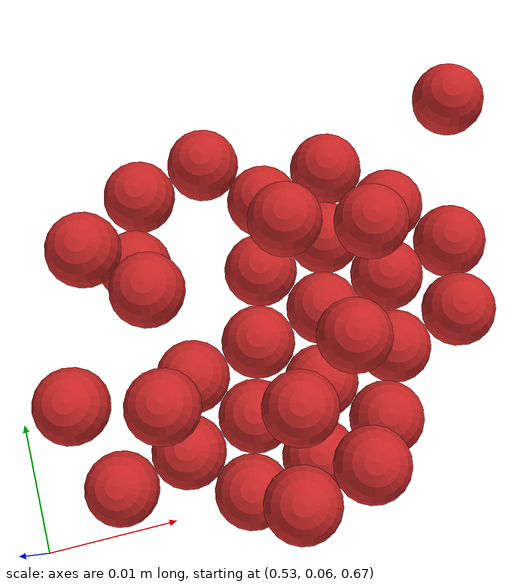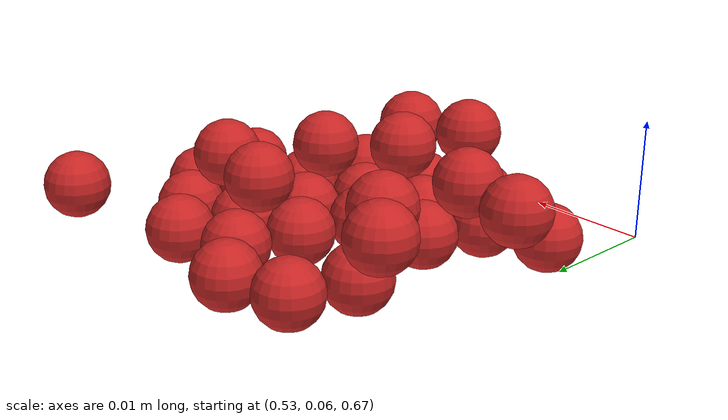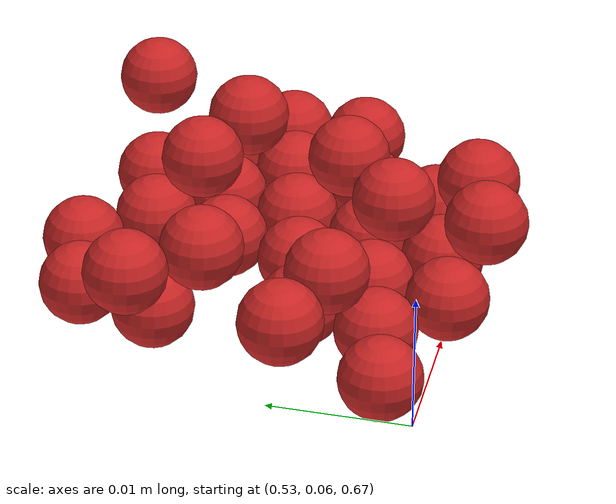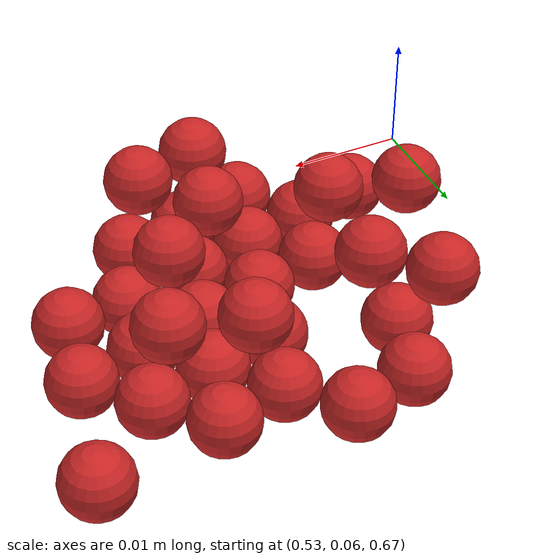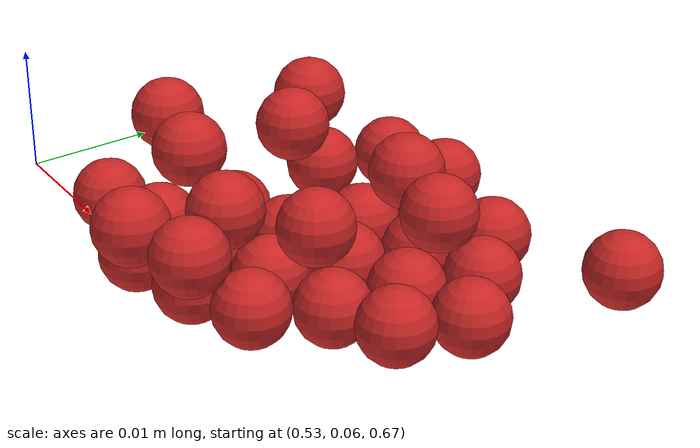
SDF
<sdf version="1.4">
 <world name="default">
  <model name="ground_plane">
   <static>1</static>
   <link name="link">
    <collision name="collision">
     <geometry><plane><normal>0 0 1</normal><size>100 100</size></plane></geometry>
     <surface><friction><ode><mu>100</mu><mu2>50</mu2></ode></friction></surface>
    </collision>
    <visual name="visual">
     <cast_shadows>0</cast_shadows>
     <geometry><plane><normal>0 0 1</normal><size>100 100</size></plane></geometry>
     <material>
      <script><uri>file://media/materials/scripts/gazebo.material</uri><name>Gazebo/Grey</name></script>
     </material>
    </visual>
    <velocity_decay><linear>0</linear><angular>0</angular></velocity_decay>
   </link>
  </model>
  <model name="sphere1">
   <pose>0.003203 0.003386 -0.026011 0.000162 -7.8e-05 1.65436e-24</pose>
   <link name="link">
    <pose>0.540545 0.067517 0.694885 0 -0 0</pose>
    <inertial>
     <mass>1e-08</mass>
     <inertia><ixx>4e-08</ixx><ixy>0</ixy><ixz>0</ixz><iyy>4e-08</iyy><iyz>0</iyz><izz>4e-08</izz></inertia>
    </inertial>
    <collision name="collision">
     <surface>
      <bounce><restitution_coefficient>0.5</restitution_coefficient><threshold>0</threshold></bounce>
      <contact><ode><kp>1e+08</kp><kd>1</kd></ode></contact>
      <friction><ode><mu>1e-06</mu><mu2>1e-06</mu2></ode></friction>
     </surface>
     <geometry><sphere><radius>0.003</radius></sphere></geometry>
    </collision>
    <visual name="visual">
     <geometry><sphere><radius>0.003</radius></sphere></geometry>
     <material>
      <script><uri>file://media/materials/scripts/gazebo.material</uri><name>Gazebo/Red</name></script>
     </material>
    </visual>
    <velocity_decay><linear>0</linear><angular>0</angular></velocity_decay>
   </link>
   <static>0</static>
  </model>
  <model name="sphere2">
   <pose>0.005686 -0.005185 -0.026004 0.000139 -0.000249 -1.8e-05</pose>
   <link name="link">
    <pose>0.546545 0.067517 0.694885 0 -0 0</pose>
    <inertial>
     <mass>1e-08</mass>
     <inertia><ixx>4e-08</ixx><ixy>0</ixy><ixz>0</ixz><iyy>4e-08</iyy><iyz>0</iyz><izz>4e-08</izz></inertia>
    </inertial>
    <collision name="collision">
     <surface>
      <bounce><restitution_coefficient>0.5</restitution_coefficient><threshold>0</threshold></bounce>
      <contact><ode><kp>1e+08</kp><kd>1</kd></ode></contact>
      <friction><ode><mu>1e-06</mu><mu2>1e-06</mu2></ode></friction>
     </surface>
     <geometry><sphere><radius>0.003</radius></sphere></geometry>
    </collision>
    <visual name="visual">
     <geometry><sphere><radius>0.003</radius></sphere></geometry>
     <material>
      <script><uri>file://media/materials/scripts/gazebo.material</uri><name>Gazebo/Red</name></script>
     </material>
    </visual>
    <velocity_decay><linear>0</linear><angular>0</angular></velocity_decay>
   </link>
   <static>0</static>
  </model>
  <model name="sphere5">
   <pose>0.000769 0.007472 -0.026106 0.000181 -0.000287 -1.32349e-23</pose>
   <link name="link">
    <pose>0.540545 0.073517 0.694885 0 -0 0</pose>
    <inertial>
     <mass>1e-08</mass>
     <inertia><ixx>4e-08</ixx><ixy>0</ixy><ixz>0</ixz><iyy>4e-08</iyy><iyz>0</iyz><izz>4e-08</izz></inertia>
    </inertial>
    <collision name="collision">
     <surface>
      <bounce><restitution_coefficient>0.5</restitution_coefficient><threshold>0</threshold></bounce>
      <contact><ode><kp>1e+08</kp><kd>1</kd></ode></contact>
      <friction><ode><mu>1e-06</mu><mu2>1e-06</mu2></ode></friction>
     </surface>
     <geometry><sphere><radius>0.003</radius></sphere></geometry>
    </collision>
    <visual name="visual">
     <geometry><sphere><radius>0.003</radius></sphere></geometry>
     <material>
      <script><uri>file://media/materials/scripts/gazebo.material</uri><name>Gazebo/Red</name></script>
     </material>
    </visual>
    <velocity_decay><linear>0</linear><angular>0</angular></velocity_decay>
   </link>
   <static>0</static>
  </model>
  <model name="sphere6">
   <pose>0.016097 0.007825 -0.025996 0.000464 0.000126 0</pose>
   <link name="link">
    <pose>0.546545 0.073517 0.694885 0 -0 0</pose>
    <inertial>
     <mass>1e-08</mass>
     <inertia><ixx>4e-08</ixx><ixy>0</ixy><ixz>0</ixz><iyy>4e-08</iyy><iyz>0</iyz><izz>4e-08</izz></inertia>
    </inertial>
    <collision name="collision">
     <surface>
      <bounce><restitution_coefficient>0.5</restitution_coefficient><threshold>0</threshold></bounce>
      <contact><ode><kp>1e+08</kp><kd>1</kd></ode></contact>
      <friction><ode><mu>1e-06</mu><mu2>1e-06</mu2></ode></friction>
     </surface>
     <geometry><sphere><radius>0.003</radius></sphere></geometry>
    </collision>
    <visual name="visual">
     <geometry><sphere><radius>0.003</radius></sphere></geometry>
     <material>
      <script><uri>file://media/materials/scripts/gazebo.material</uri><name>Gazebo/Red</name></script>
     </material>
    </visual>
    <velocity_decay><linear>0</linear><angular>0</angular></velocity_decay>
   </link>
   <static>0</static>
  </model>
  <model name="sphere10">
   <pose>0.006021 0.004342 -0.025845 6.4e-05 0.000215 0</pose>
   <link name="link">
    <pose>0.546545 0.079517 0.694885 0 -0 0</pose>
    <inertial>
     <mass>1e-08</mass>
     <inertia><ixx>4e-08</ixx><ixy>0</ixy><ixz>0</ixz><iyy>4e-08</iyy><iyz>0</iyz><izz>4e-08</izz></inertia>
    </inertial>
    <collision name="collision">
     <surface>
      <bounce><restitution_coefficient>0.5</restitution_coefficient><threshold>0</threshold></bounce>
      <contact><ode><kp>1e+08</kp><kd>1</kd></ode></contact>
      <friction><ode><mu>1e-06</mu><mu2>1e-06</mu2></ode></friction>
     </surface>
     <geometry><sphere><radius>0.003</radius></sphere></geometry>
    </collision>
    <visual name="visual">
     <geometry><sphere><radius>0.003</radius></sphere></geometry>
     <material>
      <script><uri>file://media/materials/scripts/gazebo.material</uri><name>Gazebo/Red</name></script>
     </material>
    </visual>
    <velocity_decay><linear>0</linear><angular>0</angular></velocity_decay>
   </link>
   <static>0</static>
  </model>
  <model name="sphere16">
   <pose>0.00165 -0.003881 -0.031895 0.00021 0.000134 -3.1e-05</pose>
   <link name="link">
    <pose>0.534545 0.067517 0.700885 0 -0 0</pose>
    <inertial>
     <mass>1e-08</mass>
     <inertia><ixx>4e-08</ixx><ixy>0</ixy><ixz>0</ixz><iyy>4e-08</iyy><iyz>0</iyz><izz>4e-08</izz></inertia>
    </inertial>
    <collision name="collision">
     <surface>
      <bounce><restitution_coefficient>0.5</restitution_coefficient><threshold>0</threshold></bounce>
      <contact><ode><kp>1e+08</kp><kd>1</kd></ode></contact>
      <friction><ode><mu>1e-06</mu><mu2>1e-06</mu2></ode></friction>
     </surface>
     <geometry><sphere><radius>0.003</radius></sphere></geometry>
    </collision>
    <visual name="visual">
     <geometry><sphere><radius>0.003</radius></sphere></geometry>
     <material>
      <script><uri>file://media/materials/scripts/gazebo.material</uri><name>Gazebo/Red</name></script>
     </material>
    </visual>
    <velocity_decay><linear>0</linear><angular>0</angular></velocity_decay>
   </link>
   <static>0</static>
  </model>
  <model name="sphere17">
   <pose>0.000987 -0.002211 -0.03166 0.000405 0.000742 -2e-06</pose>
   <link name="link">
    <pose>0.540545 0.067517 0.700885 0 -0 0</pose>
    <inertial>
     <mass>1e-08</mass>
     <inertia><ixx>4e-08</ixx><ixy>0</ixy><ixz>0</ixz><iyy>4e-08</iyy><iyz>0</iyz><izz>4e-08</izz></inertia>
    </inertial>
    <collision name="collision">
     <surface>
      <bounce><restitution_coefficient>0.5</restitution_coefficient><threshold>0</threshold></bounce>
      <contact><ode><kp>1e+08</kp><kd>1</kd></ode></contact>
      <friction><ode><mu>1e-06</mu><mu2>1e-06</mu2></ode></friction>
     </surface>
     <geometry><sphere><radius>0.003</radius></sphere></geometry>
    </collision>
    <visual name="visual">
     <geometry><sphere><radius>0.003</radius></sphere></geometry>
     <material>
      <script><uri>file://media/materials/scripts/gazebo.material</uri><name>Gazebo/Red</name></script>
     </material>
    </visual>
    <velocity_decay><linear>0</linear><angular>0</angular></velocity_decay>
   </link>
   <static>0</static>
  </model>
  <model name="sphere18">
   <pose>-0.000304 -0.00684 -0.031547 -0.000162 8e-06 -5.6e-05</pose>
   <link name="link">
    <pose>0.546545 0.067517 0.700885 0 -0 0</pose>
    <inertial>
     <mass>1e-08</mass>
     <inertia><ixx>4e-08</ixx><ixy>0</ixy><ixz>0</ixz><iyy>4e-08</iyy><iyz>0</iyz><izz>4e-08</izz></inertia>
    </inertial>
    <collision name="collision">
     <surface>
      <bounce><restitution_coefficient>0.5</restitution_coefficient><threshold>0</threshold></bounce>
      <contact><ode><kp>1e+08</kp><kd>1</kd></ode></contact>
      <friction><ode><mu>1e-06</mu><mu2>1e-06</mu2></ode></friction>
     </surface>
     <geometry><sphere><radius>0.003</radius></sphere></geometry>
    </collision>
    <visual name="visual">
     <geometry><sphere><radius>0.003</radius></sphere></geometry>
     <material>
      <script><uri>file://media/materials/scripts/gazebo.material</uri><name>Gazebo/Red</name></script>
     </material>
    </visual>
    <velocity_decay><linear>0</linear><angular>0</angular></velocity_decay>
   </link>
   <static>0</static>
  </model>
  <model name="sphere19">
   <pose>0.002918 -0.007158 -0.027279 -6e-06 -7.4e-05 1.7e-05</pose>
   <link name="link">
    <pose>0.552545 0.067517 0.700885 0 -0 0</pose>
    <inertial>
     <mass>1e-08</mass>
     <inertia><ixx>4e-08</ixx><ixy>0</ixy><ixz>0</ixz><iyy>4e-08</iyy><iyz>0</iyz><izz>4e-08</izz></inertia>
    </inertial>
    <collision name="collision">
     <surface>
      <bounce><restitution_coefficient>0.5</restitution_coefficient><threshold>0</threshold></bounce>
      <contact><ode><kp>1e+08</kp><kd>1</kd></ode></contact>
      <friction><ode><mu>1e-06</mu><mu2>1e-06</mu2></ode></friction>
     </surface>
     <geometry><sphere><radius>0.003</radius></sphere></geometry>
    </collision>
    <visual name="visual">
     <geometry><sphere><radius>0.003</radius></sphere></geometry>
     <material>
      <script><uri>file://media/materials/scripts/gazebo.material</uri><name>Gazebo/Red</name></script>
     </material>
    </visual>
    <velocity_decay><linear>0</linear><angular>0</angular></velocity_decay>
   </link>
   <static>0</static>
  </model>
  <model name="sphere22">
   <pose>0.008789 0.000331 -0.032001 0.00011 -2.9e-05 -4.1359e-25</pose>
   <link name="link">
    <pose>0.546545 0.073517 0.700885 0 -0 0</pose>
    <inertial>
     <mass>1e-08</mass>
     <inertia><ixx>4e-08</ixx><ixy>0</ixy><ixz>0</ixz><iyy>4e-08</iyy><iyz>0</iyz><izz>4e-08</izz></inertia>
    </inertial>
    <collision name="collision">
     <surface>
      <bounce><restitution_coefficient>0.5</restitution_coefficient><threshold>0</threshold></bounce>
      <contact><ode><kp>1e+08</kp><kd>1</kd></ode></contact>
      <friction><ode><mu>1e-06</mu><mu2>1e-06</mu2></ode></friction>
     </surface>
     <geometry><sphere><radius>0.003</radius></sphere></geometry>
    </collision>
    <visual name="visual">
     <geometry><sphere><radius>0.003</radius></sphere></geometry>
     <material>
      <script><uri>file://media/materials/scripts/gazebo.material</uri><name>Gazebo/Red</name></script>
     </material>
    </visual>
    <velocity_decay><linear>0</linear><angular>0</angular></velocity_decay>
   </link>
   <static>0</static>
  </model>
  <model name="sphere23">
   <pose>0.005376 -0.009689 -0.031397 3.4e-05 2.3e-05 1.5e-05</pose>
   <link name="link">
    <pose>0.552545 0.073517 0.700885 0 -0 0</pose>
    <inertial>
     <mass>1e-08</mass>
     <inertia><ixx>4e-08</ixx><ixy>0</ixy><ixz>0</ixz><iyy>4e-08</iyy><iyz>0</iyz><izz>4e-08</izz></inertia>
    </inertial>
    <collision name="collision">
     <surface>
      <bounce><restitution_coefficient>0.5</restitution_coefficient><threshold>0</threshold></bounce>
      <contact><ode><kp>1e+08</kp><kd>1</kd></ode></contact>
      <friction><ode><mu>1e-06</mu><mu2>1e-06</mu2></ode></friction>
     </surface>
     <geometry><sphere><radius>0.003</radius></sphere></geometry>
    </collision>
    <visual name="visual">
     <geometry><sphere><radius>0.003</radius></sphere></geometry>
     <material>
      <script><uri>file://media/materials/scripts/gazebo.material</uri><name>Gazebo/Red</name></script>
     </material>
    </visual>
    <velocity_decay><linear>0</linear><angular>0</angular></velocity_decay>
   </link>
   <static>0</static>
  </model>
  <model name="sphere27">
   <pose>0.01716 0.008794 -0.030247 0.000286 0.000306 0.000388</pose>
   <link name="link">
    <pose>0.552545 0.079517 0.700885 0 -0 0</pose>
    <inertial>
     <mass>1e-08</mass>
     <inertia><ixx>4e-08</ixx><ixy>0</ixy><ixz>0</ixz><iyy>4e-08</iyy><iyz>0</iyz><izz>4e-08</izz></inertia>
    </inertial>
    <collision name="collision">
     <surface>
      <bounce><restitution_coefficient>0.5</restitution_coefficient><threshold>0</threshold></bounce>
      <contact><ode><kp>1e+08</kp><kd>1</kd></ode></contact>
      <friction><ode><mu>1e-06</mu><mu2>1e-06</mu2></ode></friction>
     </surface>
     <geometry><sphere><radius>0.003</radius></sphere></geometry>
    </collision>
    <visual name="visual">
     <geometry><sphere><radius>0.003</radius></sphere></geometry>
     <material>
      <script><uri>file://media/materials/scripts/gazebo.material</uri><name>Gazebo/Red</name></script>
     </material>
    </visual>
    <velocity_decay><linear>0</linear><angular>0</angular></velocity_decay>
   </link>
   <static>0</static>
  </model>
  <model name="sphere33">
   <pose>0.007444 -0.000948 -0.038104 6.8e-05 -0.000172 -1.65436e-24</pose>
   <link name="link">
    <pose>0.540545 0.067517 0.706885 0 -0 0</pose>
    <inertial>
     <mass>1e-08</mass>
     <inertia><ixx>4e-08</ixx><ixy>0</ixy><ixz>0</ixz><iyy>4e-08</iyy><iyz>0</iyz><izz>4e-08</izz></inertia>
    </inertial>
    <collision name="collision">
     <surface>
      <bounce><restitution_coefficient>0.5</restitution_coefficient><threshold>0</threshold></bounce>
      <contact><ode><kp>1e+08</kp><kd>1</kd></ode></contact>
      <friction><ode><mu>1e-06</mu><mu2>1e-06</mu2></ode></friction>
     </surface>
     <geometry><sphere><radius>0.003</radius></sphere></geometry>
    </collision>
    <visual name="visual">
     <geometry><sphere><radius>0.003</radius></sphere></geometry>
     <material>
      <script><uri>file://media/materials/scripts/gazebo.material</uri><name>Gazebo/Red</name></script>
     </material>
    </visual>
    <velocity_decay><linear>0</linear><angular>0</angular></velocity_decay>
   </link>
   <static>0</static>
  </model>
  <model name="sphere34">
   <pose>0.003111 -0.008665 -0.033055 0.000181 -2.5e-05 6.3e-05</pose>
   <link name="link">
    <pose>0.546545 0.067517 0.706885 0 -0 0</pose>
    <inertial>
     <mass>1e-08</mass>
     <inertia><ixx>4e-08</ixx><ixy>0</ixy><ixz>0</ixz><iyy>4e-08</iyy><iyz>0</iyz><izz>4e-08</izz></inertia>
    </inertial>
    <collision name="collision">
     <surface>
      <bounce><restitution_coefficient>0.5</restitution_coefficient><threshold>0</threshold></bounce>
      <contact><ode><kp>1e+08</kp><kd>1</kd></ode></contact>
      <friction><ode><mu>1e-06</mu><mu2>1e-06</mu2></ode></friction>
     </surface>
     <geometry><sphere><radius>0.003</radius></sphere></geometry>
    </collision>
    <visual name="visual">
     <geometry><sphere><radius>0.003</radius></sphere></geometry>
     <material>
      <script><uri>file://media/materials/scripts/gazebo.material</uri><name>Gazebo/Red</name></script>
     </material>
    </visual>
    <velocity_decay><linear>0</linear><angular>0</angular></velocity_decay>
   </link>
   <static>0</static>
  </model>
  <model name="sphere37">
   <pose>0.010604 0.004582 -0.037971 5.5e-05 -4.4e-05 -4.1359e-25</pose>
   <link name="link">
    <pose>0.540545 0.073517 0.706885 0 -0 0</pose>
    <inertial>
     <mass>1e-08</mass>
     <inertia><ixx>4e-08</ixx><ixy>0</ixy><ixz>0</ixz><iyy>4e-08</iyy><iyz>0</iyz><izz>4e-08</izz></inertia>
    </inertial>
    <collision name="collision">
     <surface>
      <bounce><restitution_coefficient>0.5</restitution_coefficient><threshold>0</threshold></bounce>
      <contact><ode><kp>1e+08</kp><kd>1</kd></ode></contact>
      <friction><ode><mu>1e-06</mu><mu2>1e-06</mu2></ode></friction>
     </surface>
     <geometry><sphere><radius>0.003</radius></sphere></geometry>
    </collision>
    <visual name="visual">
     <geometry><sphere><radius>0.003</radius></sphere></geometry>
     <material>
      <script><uri>file://media/materials/scripts/gazebo.material</uri><name>Gazebo/Red</name></script>
     </material>
    </visual>
    <velocity_decay><linear>0</linear><angular>0</angular></velocity_decay>
   </link>
   <static>0</static>
  </model>
  <model name="sphere38">
   <pose>0.010422 0.00613 -0.03807 0.000175 -6.8e-05 -3.30872e-24</pose>
   <link name="link">
    <pose>0.546545 0.073517 0.706885 0 -0 0</pose>
    <inertial>
     <mass>1e-08</mass>
     <inertia><ixx>4e-08</ixx><ixy>0</ixy><ixz>0</ixz><iyy>4e-08</iyy><iyz>0</iyz><izz>4e-08</izz></inertia>
    </inertial>
    <collision name="collision">
     <surface>
      <bounce><restitution_coefficient>0.5</restitution_coefficient><threshold>0</threshold></bounce>
      <contact><ode><kp>1e+08</kp><kd>1</kd></ode></contact>
      <friction><ode><mu>1e-06</mu><mu2>1e-06</mu2></ode></friction>
     </surface>
     <geometry><sphere><radius>0.003</radius></sphere></geometry>
    </collision>
    <visual name="visual">
     <geometry><sphere><radius>0.003</radius></sphere></geometry>
     <material>
      <script><uri>file://media/materials/scripts/gazebo.material</uri><name>Gazebo/Red</name></script>
     </material>
    </visual>
    <velocity_decay><linear>0</linear><angular>0</angular></velocity_decay>
   </link>
   <static>0</static>
  </model>
  <model name="sphere51">
   <pose>0.007858 0.00201 -0.044313 0.000305 -0.000319 4.8e-05</pose>
   <link name="link">
    <pose>0.552545 0.067517 0.712885 0 -0 0</pose>
    <inertial>
     <mass>1e-08</mass>
     <inertia><ixx>4e-08</ixx><ixy>0</ixy><ixz>0</ixz><iyy>4e-08</iyy><iyz>0</iyz><izz>4e-08</izz></inertia>
    </inertial>
    <collision name="collision">
     <surface>
      <bounce><restitution_coefficient>0.5</restitution_coefficient><threshold>0</threshold></bounce>
      <contact><ode><kp>1e+08</kp><kd>1</kd></ode></contact>
      <friction><ode><mu>1e-06</mu><mu2>1e-06</mu2></ode></friction>
     </surface>
     <geometry><sphere><radius>0.003</radius></sphere></geometry>
    </collision>
    <visual name="visual">
     <geometry><sphere><radius>0.003</radius></sphere></geometry>
     <material>
      <script><uri>file://media/materials/scripts/gazebo.material</uri><name>Gazebo/Red</name></script>
     </material>
    </visual>
    <velocity_decay><linear>0</linear><angular>0</angular></velocity_decay>
   </link>
   <static>0</static>
  </model>
  <model name="sphere54">
   <pose>0.00758 -0.005335 -0.04442 0.000262 -0.000609 0</pose>
   <link name="link">
    <pose>0.546545 0.073517 0.712885 0 -0 0</pose>
    <inertial>
     <mass>1e-08</mass>
     <inertia><ixx>4e-08</ixx><ixy>0</ixy><ixz>0</ixz><iyy>4e-08</iyy><iyz>0</iyz><izz>4e-08</izz></inertia>
    </inertial>
    <collision name="collision">
     <surface>
      <bounce><restitution_coefficient>0.5</restitution_coefficient><threshold>0</threshold></bounce>
      <contact><ode><kp>1e+08</kp><kd>1</kd></ode></contact>
      <friction><ode><mu>1e-06</mu><mu2>1e-06</mu2></ode></friction>
     </surface>
     <geometry><sphere><radius>0.003</radius></sphere></geometry>
    </collision>
    <visual name="visual">
     <geometry><sphere><radius>0.003</radius></sphere></geometry>
     <material>
      <script><uri>file://media/materials/scripts/gazebo.material</uri><name>Gazebo/Red</name></script>
     </material>
    </visual>
    <velocity_decay><linear>0</linear><angular>0</angular></velocity_decay>
   </link>
   <static>0</static>
  </model>
  <model name="sphere55">
   <pose>0.014522 0.002924 -0.044013 -0.000484 -0.000203 -8.9e-05</pose>
   <link name="link">
    <pose>0.552545 0.073517 0.712885 0 -0 0</pose>
    <inertial>
     <mass>1e-08</mass>
     <inertia><ixx>4e-08</ixx><ixy>0</ixy><ixz>0</ixz><iyy>4e-08</iyy><iyz>0</iyz><izz>4e-08</izz></inertia>
    </inertial>
    <collision name="collision">
     <surface>
      <bounce><restitution_coefficient>0.5</restitution_coefficient><threshold>0</threshold></bounce>
      <contact><ode><kp>1e+08</kp><kd>1</kd></ode></contact>
      <friction><ode><mu>1e-06</mu><mu2>1e-06</mu2></ode></friction>
     </surface>
     <geometry><sphere><radius>0.003</radius></sphere></geometry>
    </collision>
    <visual name="visual">
     <geometry><sphere><radius>0.003</radius></sphere></geometry>
     <material>
      <script><uri>file://media/materials/scripts/gazebo.material</uri><name>Gazebo/Red</name></script>
     </material>
    </visual>
    <velocity_decay><linear>0</linear><angular>0</angular></velocity_decay>
   </link>
   <static>0</static>
  </model>
  <model name="sphere57">
   <pose>0.008039 0.008551 -0.043964 -8.1e-05 -6e-05 -8.27181e-25</pose>
   <link name="link">
    <pose>0.540545 0.079517 0.712885 0 -0 0</pose>
    <inertial>
     <mass>1e-08</mass>
     <inertia><ixx>4e-08</ixx><ixy>0</ixy><ixz>0</ixz><iyy>4e-08</iyy><iyz>0</iyz><izz>4e-08</izz></inertia>
    </inertial>
    <collision name="collision">
     <surface>
      <bounce><restitution_coefficient>0.5</restitution_coefficient><threshold>0</threshold></bounce>
      <contact><ode><kp>1e+08</kp><kd>1</kd></ode></contact>
      <friction><ode><mu>1e-06</mu><mu2>1e-06</mu2></ode></friction>
     </surface>
     <geometry><sphere><radius>0.003</radius></sphere></geometry>
    </collision>
    <visual name="visual">
     <geometry><sphere><radius>0.003</radius></sphere></geometry>
     <material>
      <script><uri>file://media/materials/scripts/gazebo.material</uri><name>Gazebo/Red</name></script>
     </material>
    </visual>
    <velocity_decay><linear>0</linear><angular>0</angular></velocity_decay>
   </link>
   <static>0</static>
  </model>
  <model name="sphere65">
   <pose>0.000579 0.00083 -0.045123 0 -0 0</pose>
   <link name="link">
    <pose>0.540545 0.067517 0.718885 0 -0 0</pose>
    <inertial>
     <mass>1e-08</mass>
     <inertia><ixx>4e-08</ixx><ixy>0</ixy><ixz>0</ixz><iyy>4e-08</iyy><iyz>0</iyz><izz>4e-08</izz></inertia>
    </inertial>
    <collision name="collision">
     <surface>
      <bounce><restitution_coefficient>0.5</restitution_coefficient><threshold>0</threshold></bounce>
      <contact><ode><kp>1e+08</kp><kd>1</kd></ode></contact>
      <friction><ode><mu>1e-06</mu><mu2>1e-06</mu2></ode></friction>
     </surface>
     <geometry><sphere><radius>0.003</radius></sphere></geometry>
    </collision>
    <visual name="visual">
     <geometry><sphere><radius>0.003</radius></sphere></geometry>
     <material>
      <script><uri>file://media/materials/scripts/gazebo.material</uri><name>Gazebo/Red</name></script>
     </material>
    </visual>
    <velocity_decay><linear>0</linear><angular>0</angular></velocity_decay>
   </link>
   <static>0</static>
  </model>
  <model name="sphere66">
   <pose>0.004666 -0.00176 -0.045083 0 -0 0</pose>
   <link name="link">
    <pose>0.546545 0.067517 0.718885 0 -0 0</pose>
    <inertial>
     <mass>1e-08</mass>
     <inertia><ixx>4e-08</ixx><ixy>0</ixy><ixz>0</ixz><iyy>4e-08</iyy><iyz>0</iyz><izz>4e-08</izz></inertia>
    </inertial>
    <collision name="collision">
     <surface>
      <bounce><restitution_coefficient>0.5</restitution_coefficient><threshold>0</threshold></bounce>
      <contact><ode><kp>1e+08</kp><kd>1</kd></ode></contact>
      <friction><ode><mu>1e-06</mu><mu2>1e-06</mu2></ode></friction>
     </surface>
     <geometry><sphere><radius>0.003</radius></sphere></geometry>
    </collision>
    <visual name="visual">
     <geometry><sphere><radius>0.003</radius></sphere></geometry>
     <material>
      <script><uri>file://media/materials/scripts/gazebo.material</uri><name>Gazebo/Red</name></script>
     </material>
    </visual>
    <velocity_decay><linear>0</linear><angular>0</angular></velocity_decay>
   </link>
   <static>0</static>
  </model>
  <model name="sphere67">
   <pose>0.01336 0.003411 -0.049169 7.7e-05 -4.6e-05 3.6e-05</pose>
   <link name="link">
    <pose>0.552545 0.067517 0.718885 0 -0 0</pose>
    <inertial>
     <mass>1e-08</mass>
     <inertia><ixx>4e-08</ixx><ixy>0</ixy><ixz>0</ixz><iyy>4e-08</iyy><iyz>0</iyz><izz>4e-08</izz></inertia>
    </inertial>
    <collision name="collision">
     <surface>
      <bounce><restitution_coefficient>0.5</restitution_coefficient><threshold>0</threshold></bounce>
      <contact><ode><kp>1e+08</kp><kd>1</kd></ode></contact>
      <friction><ode><mu>1e-06</mu><mu2>1e-06</mu2></ode></friction>
     </surface>
     <geometry><sphere><radius>0.003</radius></sphere></geometry>
    </collision>
    <visual name="visual">
     <geometry><sphere><radius>0.003</radius></sphere></geometry>
     <material>
      <script><uri>file://media/materials/scripts/gazebo.material</uri><name>Gazebo/Red</name></script>
     </material>
    </visual>
    <velocity_decay><linear>0</linear><angular>0</angular></velocity_decay>
   </link>
   <static>0</static>
  </model>
  <model name="sphere70">
   <pose>0.014498 0.001719 -0.049892 -5e-06 0.000112 0</pose>
   <link name="link">
    <pose>0.546545 0.073517 0.718885 0 -0 0</pose>
    <inertial>
     <mass>1e-08</mass>
     <inertia><ixx>4e-08</ixx><ixy>0</ixy><ixz>0</ixz><iyy>4e-08</iyy><iyz>0</iyz><izz>4e-08</izz></inertia>
    </inertial>
    <collision name="collision">
     <surface>
      <bounce><restitution_coefficient>0.5</restitution_coefficient><threshold>0</threshold></bounce>
      <contact><ode><kp>1e+08</kp><kd>1</kd></ode></contact>
      <friction><ode><mu>1e-06</mu><mu2>1e-06</mu2></ode></friction>
     </surface>
     <geometry><sphere><radius>0.003</radius></sphere></geometry>
    </collision>
    <visual name="visual">
     <geometry><sphere><radius>0.003</radius></sphere></geometry>
     <material>
      <script><uri>file://media/materials/scripts/gazebo.material</uri><name>Gazebo/Red</name></script>
     </material>
    </visual>
    <velocity_decay><linear>0</linear><angular>0</angular></velocity_decay>
   </link>
   <static>0</static>
  </model>
  <model name="sphere80">
   <pose>-8.4e-05 0.002528 -0.051172 0 -0 0</pose>
   <link name="link">
    <pose>0.534545 0.067517 0.724885 0 -0 0</pose>
    <inertial>
     <mass>1e-08</mass>
     <inertia><ixx>4e-08</ixx><ixy>0</ixy><ixz>0</ixz><iyy>4e-08</iyy><iyz>0</iyz><izz>4e-08</izz></inertia>
    </inertial>
    <collision name="collision">
     <surface>
      <bounce><restitution_coefficient>0.5</restitution_coefficient><threshold>0</threshold></bounce>
      <contact><ode><kp>1e+08</kp><kd>1</kd></ode></contact>
      <friction><ode><mu>1e-06</mu><mu2>1e-06</mu2></ode></friction>
     </surface>
     <geometry><sphere><radius>0.003</radius></sphere></geometry>
    </collision>
    <visual name="visual">
     <geometry><sphere><radius>0.003</radius></sphere></geometry>
     <material>
      <script><uri>file://media/materials/scripts/gazebo.material</uri><name>Gazebo/Red</name></script>
     </material>
    </visual>
    <velocity_decay><linear>0</linear><angular>0</angular></velocity_decay>
   </link>
   <static>0</static>
  </model>
  <model name="sphere82">
   <pose>0.002885 0.004797 -0.055899 4.1e-05 9.1e-05 -8.27181e-25</pose>
   <link name="link">
    <pose>0.546545 0.067517 0.724885 0 -0 0</pose>
    <inertial>
     <mass>1e-08</mass>
     <inertia><ixx>4e-08</ixx><ixy>0</ixy><ixz>0</ixz><iyy>4e-08</iyy><iyz>0</iyz><izz>4e-08</izz></inertia>
    </inertial>
    <collision name="collision">
     <surface>
      <bounce><restitution_coefficient>0.5</restitution_coefficient><threshold>0</threshold></bounce>
      <contact><ode><kp>1e+08</kp><kd>1</kd></ode></contact>
      <friction><ode><mu>1e-06</mu><mu2>1e-06</mu2></ode></friction>
     </surface>
     <geometry><sphere><radius>0.003</radius></sphere></geometry>
    </collision>
    <visual name="visual">
     <geometry><sphere><radius>0.003</radius></sphere></geometry>
     <material>
      <script><uri>file://media/materials/scripts/gazebo.material</uri><name>Gazebo/Red</name></script>
     </material>
    </visual>
    <velocity_decay><linear>0</linear><angular>0</angular></velocity_decay>
   </link>
   <static>0</static>
  </model>
  <model name="sphere83">
   <pose>0.004103 0.00269 -0.051338 0 -0 0</pose>
   <link name="link">
    <pose>0.552545 0.067517 0.724885 0 -0 0</pose>
    <inertial>
     <mass>1e-08</mass>
     <inertia><ixx>4e-08</ixx><ixy>0</ixy><ixz>0</ixz><iyy>4e-08</iyy><iyz>0</iyz><izz>4e-08</izz></inertia>
    </inertial>
    <collision name="collision">
     <surface>
      <bounce><restitution_coefficient>0.5</restitution_coefficient><threshold>0</threshold></bounce>
      <contact><ode><kp>1e+08</kp><kd>1</kd></ode></contact>
      <friction><ode><mu>1e-06</mu><mu2>1e-06</mu2></ode></friction>
     </surface>
     <geometry><sphere><radius>0.003</radius></sphere></geometry>
    </collision>
    <visual name="visual">
     <geometry><sphere><radius>0.003</radius></sphere></geometry>
     <material>
      <script><uri>file://media/materials/scripts/gazebo.material</uri><name>Gazebo/Red</name></script>
     </material>
    </visual>
    <velocity_decay><linear>0</linear><angular>0</angular></velocity_decay>
   </link>
   <static>0</static>
  </model>
  <model name="sphere84">
   <pose>0.003221 0.008273 -0.051065 0 -0 0</pose>
   <link name="link">
    <pose>0.534545 0.073517 0.724885 0 -0 0</pose>
    <inertial>
     <mass>1e-08</mass>
     <inertia><ixx>4e-08</ixx><ixy>0</ixy><ixz>0</ixz><iyy>4e-08</iyy><iyz>0</iyz><izz>4e-08</izz></inertia>
    </inertial>
    <collision name="collision">
     <surface>
      <bounce><restitution_coefficient>0.5</restitution_coefficient><threshold>0</threshold></bounce>
      <contact><ode><kp>1e+08</kp><kd>1</kd></ode></contact>
      <friction><ode><mu>1e-06</mu><mu2>1e-06</mu2></ode></friction>
     </surface>
     <geometry><sphere><radius>0.003</radius></sphere></geometry>
    </collision>
    <visual name="visual">
     <geometry><sphere><radius>0.003</radius></sphere></geometry>
     <material>
      <script><uri>file://media/materials/scripts/gazebo.material</uri><name>Gazebo/Red</name></script>
     </material>
    </visual>
    <velocity_decay><linear>0</linear><angular>0</angular></velocity_decay>
   </link>
   <static>0</static>
  </model>
  <model name="sphere85">
   <pose>0.001392 0.003951 -0.051071 0 -0 0</pose>
   <link name="link">
    <pose>0.540545 0.073517 0.724885 0 -0 0</pose>
    <inertial>
     <mass>1e-08</mass>
     <inertia><ixx>4e-08</ixx><ixy>0</ixy><ixz>0</ixz><iyy>4e-08</iyy><iyz>0</iyz><izz>4e-08</izz></inertia>
    </inertial>
    <collision name="collision">
     <surface>
      <bounce><restitution_coefficient>0.5</restitution_coefficient><threshold>0</threshold></bounce>
      <contact><ode><kp>1e+08</kp><kd>1</kd></ode></contact>
      <friction><ode><mu>1e-06</mu><mu2>1e-06</mu2></ode></friction>
     </surface>
     <geometry><sphere><radius>0.003</radius></sphere></geometry>
    </collision>
    <visual name="visual">
     <geometry><sphere><radius>0.003</radius></sphere></geometry>
     <material>
      <script><uri>file://media/materials/scripts/gazebo.material</uri><name>Gazebo/Red</name></script>
     </material>
    </visual>
    <velocity_decay><linear>0</linear><angular>0</angular></velocity_decay>
   </link>
   <static>0</static>
  </model>
  <model name="sphere86">
   <pose>0.007116 0.006948 -0.05107 0 -0 0</pose>
   <link name="link">
    <pose>0.546545 0.073517 0.724885 0 -0 0</pose>
    <inertial>
     <mass>1e-08</mass>
     <inertia><ixx>4e-08</ixx><ixy>0</ixy><ixz>0</ixz><iyy>4e-08</iyy><iyz>0</iyz><izz>4e-08</izz></inertia>
    </inertial>
    <collision name="collision">
     <surface>
      <bounce><restitution_coefficient>0.5</restitution_coefficient><threshold>0</threshold></bounce>
      <contact><ode><kp>1e+08</kp><kd>1</kd></ode></contact>
      <friction><ode><mu>1e-06</mu><mu2>1e-06</mu2></ode></friction>
     </surface>
     <geometry><sphere><radius>0.003</radius></sphere></geometry>
    </collision>
    <visual name="visual">
     <geometry><sphere><radius>0.003</radius></sphere></geometry>
     <material>
      <script><uri>file://media/materials/scripts/gazebo.material</uri><name>Gazebo/Red</name></script>
     </material>
    </visual>
    <velocity_decay><linear>0</linear><angular>0</angular></velocity_decay>
   </link>
   <static>0</static>
  </model>
  <model name="sphere87">
   <pose>0.007718 0.005146 -0.051113 0 -0 0</pose>
   <link name="link">
    <pose>0.552545 0.073517 0.724885 0 -0 0</pose>
    <inertial>
     <mass>1e-08</mass>
     <inertia><ixx>4e-08</ixx><ixy>0</ixy><ixz>0</ixz><iyy>4e-08</iyy><iyz>0</iyz><izz>4e-08</izz></inertia>
    </inertial>
    <collision name="collision">
     <surface>
      <bounce><restitution_coefficient>0.5</restitution_coefficient><threshold>0</threshold></bounce>
      <contact><ode><kp>1e+08</kp><kd>1</kd></ode></contact>
      <friction><ode><mu>1e-06</mu><mu2>1e-06</mu2></ode></friction>
     </surface>
     <geometry><sphere><radius>0.003</radius></sphere></geometry>
    </collision>
    <visual name="visual">
     <geometry><sphere><radius>0.003</radius></sphere></geometry>
     <material>
      <script><uri>file://media/materials/scripts/gazebo.material</uri><name>Gazebo/Red</name></script>
     </material>
    </visual>
    <velocity_decay><linear>0</linear><angular>0</angular></velocity_decay>
   </link>
   <static>0</static>
  </model>
  <model name="sphere89">
   <pose>0.002197 0.007114 -0.05594 -1.2e-05 -7e-06 -1.29247e-26</pose>
   <link name="link">
    <pose>0.540545 0.079517 0.724885 0 -0 0</pose>
    <inertial>
     <mass>1e-08</mass>
     <inertia><ixx>4e-08</ixx><ixy>0</ixy><ixz>0</ixz><iyy>4e-08</iyy><iyz>0</iyz><izz>4e-08</izz></inertia>
    </inertial>
    <collision name="collision">
     <surface>
      <bounce><restitution_coefficient>0.5</restitution_coefficient><threshold>0</threshold></bounce>
      <contact><ode><kp>1e+08</kp><kd>1</kd></ode></contact>
      <friction><ode><mu>1e-06</mu><mu2>1e-06</mu2></ode></friction>
     </surface>
     <geometry><sphere><radius>0.003</radius></sphere></geometry>
    </collision>
    <visual name="visual">
     <geometry><sphere><radius>0.003</radius></sphere></geometry>
     <material>
      <script><uri>file://media/materials/scripts/gazebo.material</uri><name>Gazebo/Red</name></script>
     </material>
    </visual>
    <velocity_decay><linear>0</linear><angular>0</angular></velocity_decay>
   </link>
   <static>0</static>
  </model>
  <model name="sphere91">
   <pose>0.00594 0.005866 -0.055923 0.000111 5.9e-05 0</pose>
   <link name="link">
    <pose>0.552545 0.079517 0.724885 0 -0 0</pose>
    <inertial>
     <mass>1e-08</mass>
     <inertia><ixx>4e-08</ixx><ixy>0</ixy><ixz>0</ixz><iyy>4e-08</iyy><iyz>0</iyz><izz>4e-08</izz></inertia>
    </inertial>
    <collision name="collision">
     <surface>
      <bounce><restitution_coefficient>0.5</restitution_coefficient><threshold>0</threshold></bounce>
      <contact><ode><kp>1e+08</kp><kd>1</kd></ode></contact>
      <friction><ode><mu>1e-06</mu><mu2>1e-06</mu2></ode></friction>
     </surface>
     <geometry><sphere><radius>0.003</radius></sphere></geometry>
    </collision>
    <visual name="visual">
     <geometry><sphere><radius>0.003</radius></sphere></geometry>
     <material>
      <script><uri>file://media/materials/scripts/gazebo.material</uri><name>Gazebo/Red</name></script>
     </material>
    </visual>
    <velocity_decay><linear>0</linear><angular>0</angular></velocity_decay>
   </link>
   <static>0</static>
  </model>
 </world>
</sdf>
